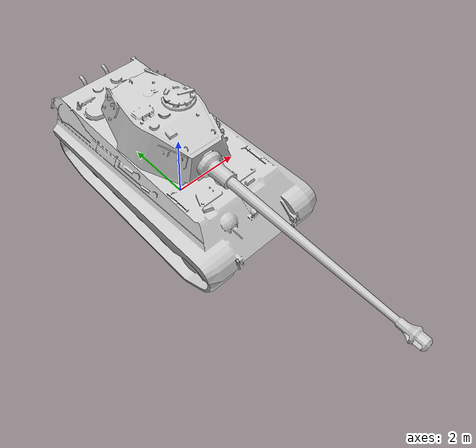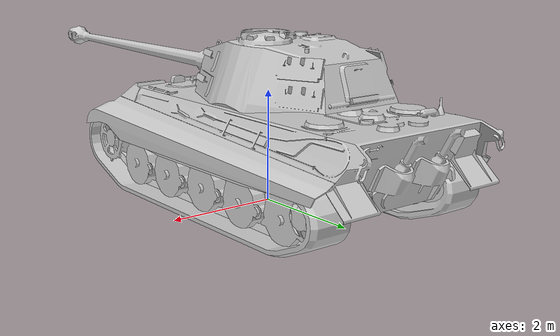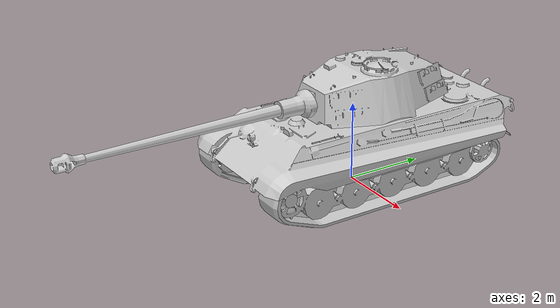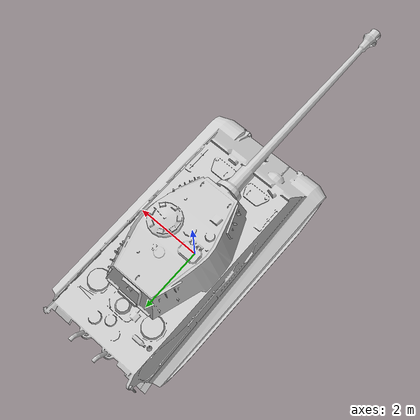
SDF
<?xml version="1.0"?>
<!-- created with Phobos 1.0.1 "Capricious Choutengan" -->
<sdf version="1.5">
  <model name="tank">
    <link name="sol_teker">
      <pose>-1.04 0 0.47 1.5708 0 -1.5708</pose>
      <inertial>
        <mass>9.511</mass>
        <inertia>
          <ixx>12.53724</ixx>
          <ixy>-0.598</ixy>
          <ixz>4.47881</ixz>
          <iyy>31.32672</iyy>
          <iyz>0.70665</iyz>
          <izz>23.32156</izz>
        </inertia>
        <pose>0 -0.47 -1.04 0 0 0</pose>
      </inertial>
      <collision name="Wheels_Right">
        <pose>0.05636 0.22491 0.27876 -1.5708 1.5708 0</pose>
        <geometry>
          <box>
            <size>0.7229 6.40001 1.2042</size>
          </box>
        </geometry>
      </collision>
      <visual name="Wheels_Right">
        <pose>-4.545984211290488e-08 -0.4700000286102295 -1.0399999618530273 -1.5707963705062866 1.570796251296997 0.0</pose>
        <material>
          <ambient>0.8 0.8 0.8 1.0</ambient>
          <diffuse>0.8 0.8 0.8 1.0</diffuse>
          <specular>0 0 0 1.0</specular>
        </material>
        <geometry>
          <mesh>
            <uri>model://tank/meshes/Object_4.dae</uri>
            <scale>1.0 1.0 1.0</scale>
          </mesh>
        </geometry>
      </visual>
    </link>
    <link name="sag_teker">
      <pose>1.04 0 0.47 1.5708 0 1.5708</pose>
      <inertial>
        <mass>9.511</mass>
        <inertia>
          <ixx>12.52509</ixx>
          <ixy>0.01543</ixy>
          <ixz>-4.48029</ixz>
          <iyy>31.40427</iyy>
          <iyz>-0.76543</iyz>
          <izz>23.42209</izz>
        </inertia>
        <pose>0 -0.47 -1.04 0 0 0</pose>
      </inertial>
      <collision name="Wheels_Left">
        <pose>-0.05636 0.22491 0.27566 -1.5708 -1.5708 0</pose>
        <geometry>
          <box>
            <size>0.73888 6.40001 1.2042</size>
          </box>
        </geometry>
      </collision>
      <visual name="Wheels_Left">
        <pose>4.545984211290488e-08 -0.4700000286102295 -1.0399999618530273 -1.5707963705062866 -1.570796251296997 0.0</pose>
        <material>
          <ambient>0.8 0.8 0.8 1.0</ambient>
          <diffuse>0.8 0.8 0.8 1.0</diffuse>
          <specular>0 0 0 1.0</specular>
        </material>
        <geometry>
          <mesh>
            <uri>model://tank/meshes/Object_3.dae</uri>
            <scale>1.0 1.0 1.0</scale>
          </mesh>
        </geometry>
      </visual>
    </link>
    <link name="sol_palet">
      <pose>-1.04 0 0.47 1.5708 0 -1.5708</pose>
      <inertial>
        <mass>9.511</mass>
        <inertia>
          <ixx>15.99229</ixx>
          <ixy>-1.29376</ixy>
          <ixz>6.1697</ixz>
          <iyy>42.69142</iyy>
          <iyz>1.20956</iyz>
          <izz>34.95319</izz>
        </inertia>
        <pose>0 -0.47 -1.04 0 0 0</pose>
      </inertial>
      <collision name="Track_Right">
        <pose>0.03436 0.21523 0.39328 -1.5708 1.5708 0</pose>
        <geometry>
          <box>
            <size>0.78867 6.60592 1.38052</size>
          </box>
        </geometry>
      </collision>
      <visual name="Track_Right">
        <pose>-4.545984211290488e-08 -0.4700000286102295 -1.0399999618530273 -1.5707963705062866 1.570796251296997 0.0</pose>
        <material>
          <ambient>0.8 0.8 0.8 1.0</ambient>
          <diffuse>0.8 0.8 0.8 1.0</diffuse>
          <specular>0 0 0 1.0</specular>
        </material>
        <geometry>
          <mesh>
            <uri>model://tank/meshes/Object_2.dae</uri>
            <scale>1.0 1.0 1.0</scale>
          </mesh>
        </geometry>
      </visual>
    </link>
    <link name="silah_bolumu">
      <pose>0 0.22787 1.89709 0 0 -3.14159</pose>
      <inertial>
        <mass>9.511</mass>
        <inertia>
          <ixx>11.37277</ixx>
          <ixy>0.06555</ixy>
          <ixz>0.0714</ixz>
          <iyy>5.86534</iyy>
          <iyz>-1.68641</iyz>
          <izz>10.73085</izz>
        </inertia>
        <pose>0 0 0 0 0 0</pose>
      </inertial>
      <collision name="Turret">
        <pose>0.01295 -0.28332 0.60783 0 0 0</pose>
        <geometry>
          <box>
            <size>2.61723 3.78731 1.22122</size>
          </box>
        </geometry>
      </collision>
      <visual name="Turret">
        <pose>0.0 2.9802322387695312e-08 -2.384185791015625e-07 0.0 -0.0 -6.357299753290135e-08</pose>
        <material>
          <ambient>0.8 0.8 0.8 1.0</ambient>
          <diffuse>0.8 0.8 0.8 1.0</diffuse>
          <specular>0 0 0 1.0</specular>
        </material>
        <geometry>
          <mesh>
            <uri>model://tank/meshes/Object_1.002.dae</uri>
            <scale>1.0 1.0 1.0</scale>
          </mesh>
        </geometry>
      </visual>
    </link>
    <link name="sag_palet">
      <pose>1.04 0 0.47 1.5708 0 1.5708</pose>
      <inertial>
        <mass>9.511</mass>
        <inertia>
          <ixx>16.01155</ixx>
          <ixy>1.28381</ixy>
          <ixz>-6.19351</ixz>
          <iyy>42.58376</iyy>
          <iyz>0.98101</iyz>
          <izz>34.86257</izz>
        </inertia>
        <pose>0 -0.47 -1.04 0 0 0</pose>
      </inertial>
      <collision name="Track_Left">
        <pose>-0.03436 0.21523 0.39328 -1.5708 -1.5708 0</pose>
        <geometry>
          <box>
            <size>0.78867 6.60592 1.38052</size>
          </box>
        </geometry>
      </collision>
      <visual name="Track_Left">
        <pose>4.545984211290488e-08 -0.47000008821487427 -1.0399999618530273 -1.5707963705062866 -1.570796251296997 0.0</pose>
        <material>
          <ambient>0.8 0.8 0.8 1.0</ambient>
          <diffuse>0.8 0.8 0.8 1.0</diffuse>
          <specular>0 0 0 1.0</specular>
        </material>
        <geometry>
          <mesh>
            <uri>model://tank/meshes/Object_1.dae</uri>
            <scale>1.0 1.0 1.0</scale>
          </mesh>
        </geometry>
      </visual>
    </link>
    <link name="namlu">
      <pose>-0.06438 -1.20173 2.29482 0 0 0</pose>
      <inertial>
        <mass>9.511</mass>
        <inertia>
          <ixx>159.77608</ixx>
          <ixy>-0.00169</ixy>
          <ixz>-0.32697</ixz>
          <iyy>0.15212</iyy>
          <iyz>-0.70765</iyz>
          <izz>159.78377</izz>
        </inertia>
        <pose>0 0 0 0 0 0</pose>
      </inertial>
      <collision name="Gun">
        <pose>0 -3.23505 -0.01206 1.5708 0 0</pose>
        <geometry>
          <cylinder>
            <radius>0.37102</radius>
            <length>6.41957</length>
          </cylinder>
        </geometry>
      </collision>
      <visual name="Gun">
        <pose>0.0 -1.1920928955078125e-07 0.0 0.0 -0.0 0.0</pose>
        <material>
          <ambient>0.8 0.8 0.8 1.0</ambient>
          <diffuse>0.8 0.8 0.8 1.0</diffuse>
          <specular>0 0 0 1.0</specular>
        </material>
        <geometry>
          <mesh>
            <uri>model://tank/meshes/Object_1.003.dae</uri>
            <scale>1.0 1.0 1.0</scale>
          </mesh>
        </geometry>
      </visual>
    </link>
    <link name="govde">
      <pose>0 0 1.06379 0 0 -3.14159</pose>
      <inertial>
        <mass>9.511</mass>
        <inertia>
          <ixx>35.63729</ixx>
          <ixy>-0.00598</ixy>
          <ixz>0.0172</ixz>
          <iyy>9.64041</iyy>
          <iyz>-1.00546</iyz>
          <izz>42.42702</izz>
        </inertia>
        <pose>0 0 0 0 0 0</pose>
      </inertial>
      <collision name="Hull">
        <pose>0.00268 -0.26888 0.28422 0 0 0</pose>
        <geometry>
          <box>
            <size>3.75521 7.42093 1.62842</size>
          </box>
        </geometry>
      </collision>
      <visual name="Hull">
        <pose>0.0 0.0 0.0 0.0 -0.0 -6.357299753290135e-08</pose>
        <material>
          <ambient>0.8 0.8 0.8 1.0</ambient>
          <diffuse>0.8 0.8 0.8 1.0</diffuse>
          <specular>0 0 0 1.0</specular>
        </material>
        <geometry>
          <mesh>
            <uri>model://tank/meshes/Object_1.001.dae</uri>
            <scale>1.0 1.0 1.0</scale>
          </mesh>
        </geometry>
      </visual>
    </link>
    <joint type="revolute" name="sol_teker">
      <parent>govde</parent>
      <child>sol_teker</child>
      <pose>0.0 0.0 0.0 0.0 0.0 0.0</pose>
      <axis>
        <xyz>0 0 1.0</xyz>
        <limit>
          <lower></lower>
          <upper></upper>
          <effort>4.38</effort>
          <velocity>2.07</velocity>
        </limit>
      </axis>
    </joint>
    <joint type="revolute" name="sag_teker">
      <parent>govde</parent>
      <child>sag_teker</child>
      <pose>0.0 0.0 0.0 0.0 0.0 0.0</pose>
      <axis>
        <xyz>0 0 1.0</xyz>
        <limit>
          <lower></lower>
          <upper></upper>
          <effort>4.38</effort>
          <velocity>2.07</velocity>
        </limit>
      </axis>
    </joint>
    <joint type="revolute" name="sol_palet">
      <parent>govde</parent>
      <child>sol_palet</child>
      <pose>0.0 0.0 0.0 0.0 0.0 0.0</pose>
      <axis>
        <xyz>0 0 1.0</xyz>
        <limit>
          <lower></lower>
          <upper></upper>
          <effort>4.38</effort>
          <velocity>2.07</velocity>
        </limit>
      </axis>
    </joint>
    <joint type="revolute" name="silah_bolumu">
      <parent>govde</parent>
      <child>silah_bolumu</child>
      <pose>0.0 0.0 0.0 0.0 0.0 0.0</pose>
      <axis>
        <xyz>0 0 1.0</xyz>
        <limit>
          <lower>-1.08</lower>
          <upper>1.08</upper>
          <effort>2.4</effort>
          <velocity>1.02</velocity>
        </limit>
      </axis>
    </joint>
    <joint type="revolute" name="sag_palet">
      <parent>govde</parent>
      <child>sag_palet</child>
      <pose>0.0 0.0 0.0 0.0 0.0 0.0</pose>
      <axis>
        <xyz>0 0 1.0</xyz>
        <limit>
          <lower></lower>
          <upper></upper>
          <effort>4.38</effort>
          <velocity>2.07</velocity>
        </limit>
      </axis>
    </joint>
    <joint type="fixed" name="namlu">
      <parent>silah_bolumu</parent>
      <child>namlu</child>
      <pose>0.0 0.0 0.0 0.0 0.0 0.0</pose>
    </joint>
  </model>
</sdf>
